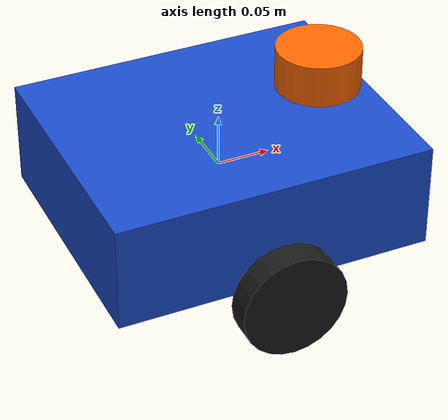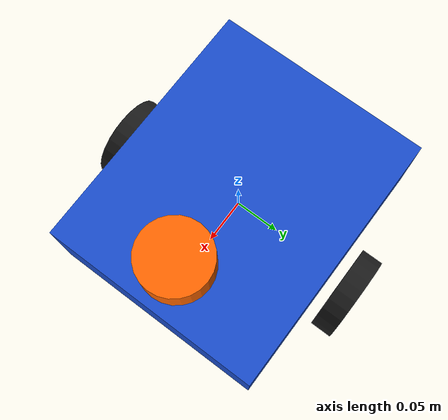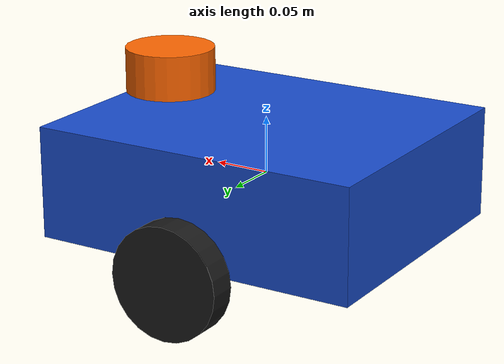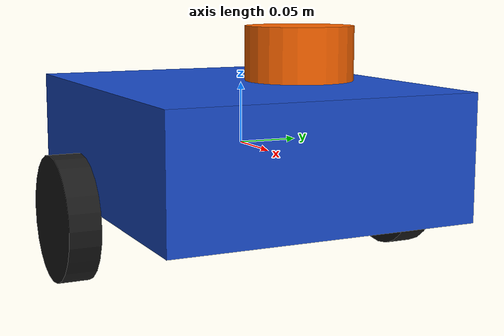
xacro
<?xml version="1.0"?>
<robot name="diff_robot" xmlns:xacro="http://www.ros.org/wiki/xacro">

    <!-- ══════════════════════════════════════════════════════
         xacro 参数（launch 里可覆盖）
         ══════════════════════════════════════════════════════ -->
    <xacro:arg name="motor_mode"      default="velocity"/>
    <xacro:arg name="motor_inertia"   default="0.5"/>
    <xacro:arg name="viscous_friction" default="0.05"/>
    <xacro:arg name="vel_gain"        default="2.0"/>
    <xacro:arg name="max_effort"      default="5.0"/>
    <xacro:arg name="encoder_cpr"     default="4096"/>

    <!-- ══════════════════════════════════════════════════════
         几何参数（xacro:property —— 改一处全车生效）
         ══════════════════════════════════════════════════════ -->
    <xacro:property name="base_length"      value="0.30"/>
    <xacro:property name="base_width"       value="0.25"/>
    <xacro:property name="base_height"      value="0.10"/>
    <xacro:property name="base_mass"        value="5.0"/>

    <xacro:property name="wheel_radius"     value="0.05"/>
    <xacro:property name="wheel_width"      value="0.025"/>
    <xacro:property name="wheel_mass"       value="0.5"/>
    <xacro:property name="wheel_separation" value="0.30"/>
    <xacro:property name="wheel_y"          value="${wheel_separation/2}"/>

    <xacro:property name="laser_radius"     value="0.04"/>
    <xacro:property name="laser_height"     value="0.04"/>

    <!-- 实心圆柱绕轴的转动惯量：m·r²/2（径向）；绕轴向：m·r² -->
    <xacro:macro name="cylinder_inertia" params="m r h">
        <inertia
            ixx="${m*(3*r*r+h*h)/12}" ixy="0.0" ixz="0.0"
            iyy="${m*(3*r*r+h*h)/12}" iyz="0.0"
            izz="${m*r*r/2}"/>
    </xacro:macro>

    <!-- ══════════════════════════════════════════════════════
         底盘
         ══════════════════════════════════════════════════════ -->
    <link name="base_link">
        <visual>
            <geometry>
                <box size="${base_length} ${base_width} ${base_height}"/>
            </geometry>
            <material name="blue">
                <color rgba="0.1 0.3 0.8 1.0"/>
            </material>
        </visual>
        <collision>
            <geometry>
                <box size="${base_length} ${base_width} ${base_height}"/>
            </geometry>
        </collision>
        <inertial>
            <mass value="${base_mass}"/>
            <origin xyz="0 0 0" rpy="0 0 0"/>
            <inertia
                ixx="0.0354" ixy="0.0" ixz="0.0"
                iyy="0.0500" iyz="0.0"
                izz="0.0563"/>
        </inertial>
    </link>

    <!-- ══════════════════════════════════════════════════════
         轮子（用宏，左右只差一个符号）
         ══════════════════════════════════════════════════════ -->
    <xacro:macro name="wheel" params="side y">
        <link name="${side}_wheel_link">
            <visual>
                <origin rpy="1.5708 0 0"/>
                <geometry>
                    <cylinder radius="${wheel_radius}" length="${wheel_width}"/>
                </geometry>
                <material name="black">
                    <color rgba="0.1 0.1 0.1 1.0"/>
                </material>
            </visual>
            <collision>
                <origin rpy="1.5708 0 0"/>
                <geometry>
                    <cylinder radius="${wheel_radius}" length="${wheel_width}"/>
                </geometry>
            </collision>
            <inertial>
                <mass value="${wheel_mass}"/>
                <origin xyz="0 0 0" rpy="1.5708 0 0"/>
                <xacro:cylinder_inertia m="${wheel_mass}" r="${wheel_radius}" h="${wheel_width}"/>
            </inertial>
        </link>

        <joint name="${side}_wheel_joint" type="continuous">
            <parent link="base_link"/>
            <child link="${side}_wheel_link"/>
            <origin xyz="0 ${y} -${wheel_radius}" rpy="0 0 0"/>
            <axis xyz="0 1 0"/>
        </joint>
    </xacro:macro>

    <xacro:wheel side="left"  y="${wheel_y}"/>
    <xacro:wheel side="right" y="${-wheel_y}"/>

    <!-- ══════════════════════════════════════════════════════
         激光雷达
         ══════════════════════════════════════════════════════ -->
    <link name="laser_link">
        <visual>
            <geometry>
                <cylinder radius="${laser_radius}" length="${laser_height}"/>
            </geometry>
            <material name="orange">
                <color rgba="1.0 0.4 0.0 1.0"/>
            </material>
        </visual>
        <collision>
            <geometry>
                <cylinder radius="${laser_radius}" length="${laser_height}"/>
            </geometry>
        </collision>
        <inertial>
            <mass value="0.2"/>
            <origin xyz="0 0 0" rpy="0 0 0"/>
            <xacro:cylinder_inertia m="0.2" r="${laser_radius}" h="${laser_height}"/>
        </inertial>
    </link>

    <joint name="base_to_laser_joint" type="fixed">
        <parent link="base_link"/>
        <child link="laser_link"/>
        <origin xyz="0.10 0 0.08" rpy="0 0 0"/>
    </joint>

    <!-- ══════════════════════════════════════════════════════
         IMU（与底盘中心重合，方便对比）
         ══════════════════════════════════════════════════════ -->
    <link name="imu_link">
        <inertial>
            <mass value="0.01"/>
            <origin xyz="0 0 0" rpy="0 0 0"/>
            <inertia ixx="1e-6" ixy="0.0" ixz="0.0"
                     iyy="1e-6" iyz="0.0" izz="1e-6"/>
        </inertial>
    </link>

    <joint name="base_to_imu_joint" type="fixed">
        <parent link="base_link"/>
        <child link="imu_link"/>
        <origin xyz="0 0 0.02" rpy="0 0 0"/>
    </joint>

    <!-- ══════════════════════════════════════════════════════
         ros2_control：差速底盘（SystemInterface）
         ══════════════════════════════════════════════════════ -->
    <ros2_control name="DiffDriveSystem" type="system">

        <hardware>
            <plugin>my_robot_control/DiffDriveHardware</plugin>

            <!-- velocity：速度指令（闭环）；effort：纯力矩指令 -->
            <param name="motor_mode">$(arg motor_mode)</param>
            <!-- 电机物理模型 -->
            <param name="motor_inertia">$(arg motor_inertia)</param>
            <param name="viscous_friction">$(arg viscous_friction)</param>
            <param name="vel_gain">$(arg vel_gain)</param>
            <param name="max_effort">$(arg max_effort)</param>
            <!-- 传感器与几何 -->
            <param name="encoder_cpr">$(arg encoder_cpr)</param>
            <param name="wheel_separation">${wheel_separation}</param>
            <param name="wheel_radius">${wheel_radius}</param>
        </hardware>

        <joint name="left_wheel_joint">
            <command_interface name="velocity"/>
            <command_interface name="effort"/>
            <state_interface name="position"/>
            <state_interface name="velocity"/>
            <state_interface name="effort"/>
        </joint>

        <joint name="right_wheel_joint">
            <command_interface name="velocity"/>
            <command_interface name="effort"/>
            <state_interface name="position"/>
            <state_interface name="velocity"/>
            <state_interface name="effort"/>
        </joint>

    </ros2_control>

    <!-- ══════════════════════════════════════════════════════
         ros2_control：IMU（SensorInterface，只读，没有指令接口）
         ══════════════════════════════════════════════════════ -->
    <ros2_control name="ImuSensor" type="sensor">

        <hardware>
            <plugin>my_robot_control/ImuSensor</plugin>
            <param name="noise_stddev">0.01</param>
            <param name="bias">0.001</param>
            <param name="seed">42</param>
            <param name="wheel_radius">${wheel_radius}</param>
        </hardware>

        <sensor name="imu_sensor">
            <state_interface name="orientation.x"/>
            <state_interface name="orientation.y"/>
            <state_interface name="orientation.z"/>
            <state_interface name="orientation.w"/>
            <state_interface name="angular_velocity.x"/>
            <state_interface name="angular_velocity.y"/>
            <state_interface name="angular_velocity.z"/>
            <state_interface name="linear_acceleration.x"/>
            <state_interface name="linear_acceleration.y"/>
            <state_interface name="linear_acceleration.z"/>
        </sensor>

    </ros2_control>

</robot>
